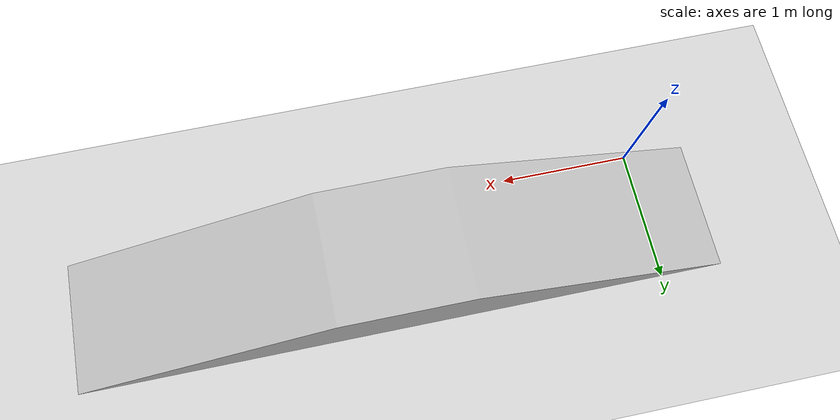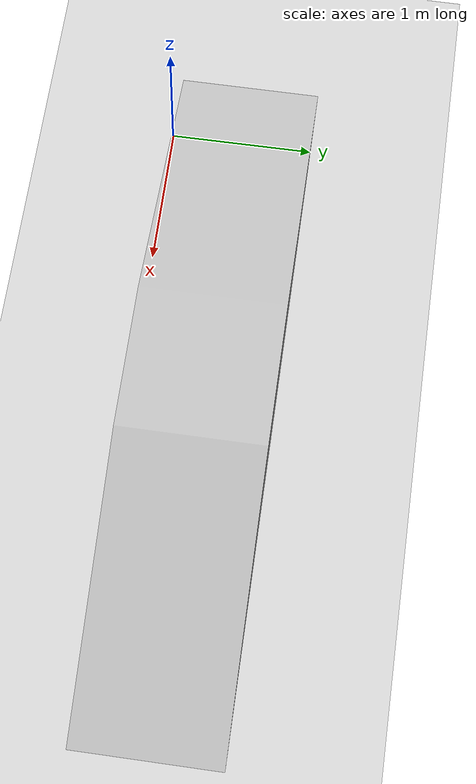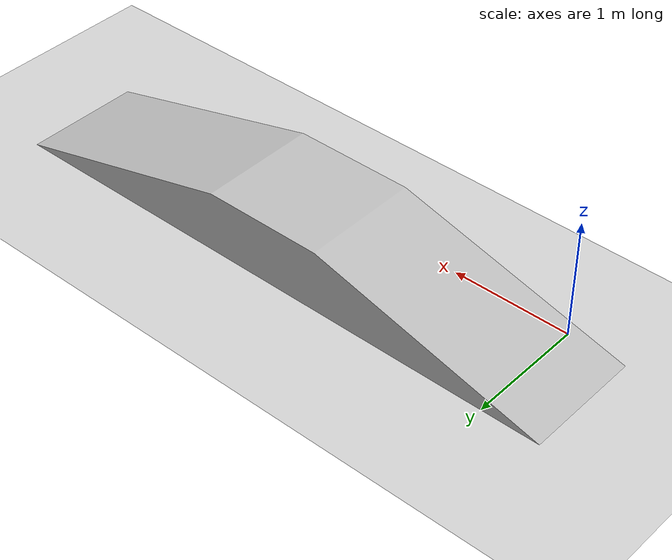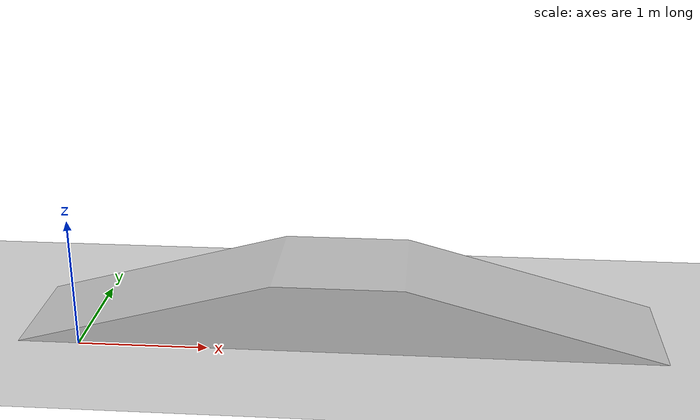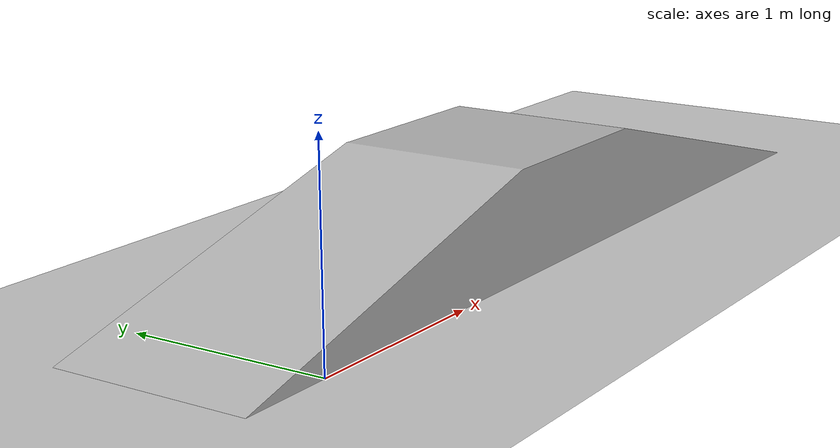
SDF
<?xml version="1.0" ?>
<sdf version="1.5">
    <world name="default">

        <physics type="ode">
        <max_step_size>0.001</max_step_size>
        <real_time_factor>1</real_time_factor>
        <real_time_update_rate>1000</real_time_update_rate>
        <gravity>0 0 -9.81</gravity>
            <ode>
                <solver>
                <type>quick</type>
                <iters>50</iters>
                <sor>1.3</sor>
                </solver>
                <constraints>
                <cfm>0.0</cfm>
                <erp>0.2</erp>
                <contact_max_correcting_vel>10.0</contact_max_correcting_vel>
                <contact_surface_layer>0.001</contact_surface_layer>
                </constraints>
            </ode>
        </physics>

        <scene>
        <sky>
            <clouds>
                <speed>12</speed>
            </clouds>
        </sky>
        </scene>
        <!-- A global light source -->
        <include>
            <uri>model://sun</uri>
        </include>
        <!-- A ground plane -->
        <include>
            <uri>model://ground_plane</uri>
        </include>

        <!-- environment blocks, obstacles or stairs -->

         <include>
            <uri>model:///home/gk/Downloads/quadruped-robot/src/simulation/unitree_gazebo/worlds/building_editor_models/slope15</uri>
        </include>

    </world>
</sdf>

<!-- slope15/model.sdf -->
<sdf version='1.6'>
  <model name='slope15'>
    <pose frame=''>4.475 0 0 1.5707 0 3.1415</pose>
    <link name='slope15'>
      <visual name='slope15_0'>
        <pose frame=''>0 0 0 0 0 0</pose>
        <geometry>
          <mesh>
            <uri>model://slope15/meshes/slope15.dae</uri>
          </mesh>
        </geometry>
      </visual>
      <collision name='slope15_0'>
        <pose frame=''>-2.475 0 -0.5 0 0 0</pose>
        <geometry>
          <mesh>
            <uri>model://slope15/meshes/slope15.stl</uri>
          </mesh>
        </geometry>

      </collision>
    </link>
    <static>1</static>
  </model>
</sdf>
